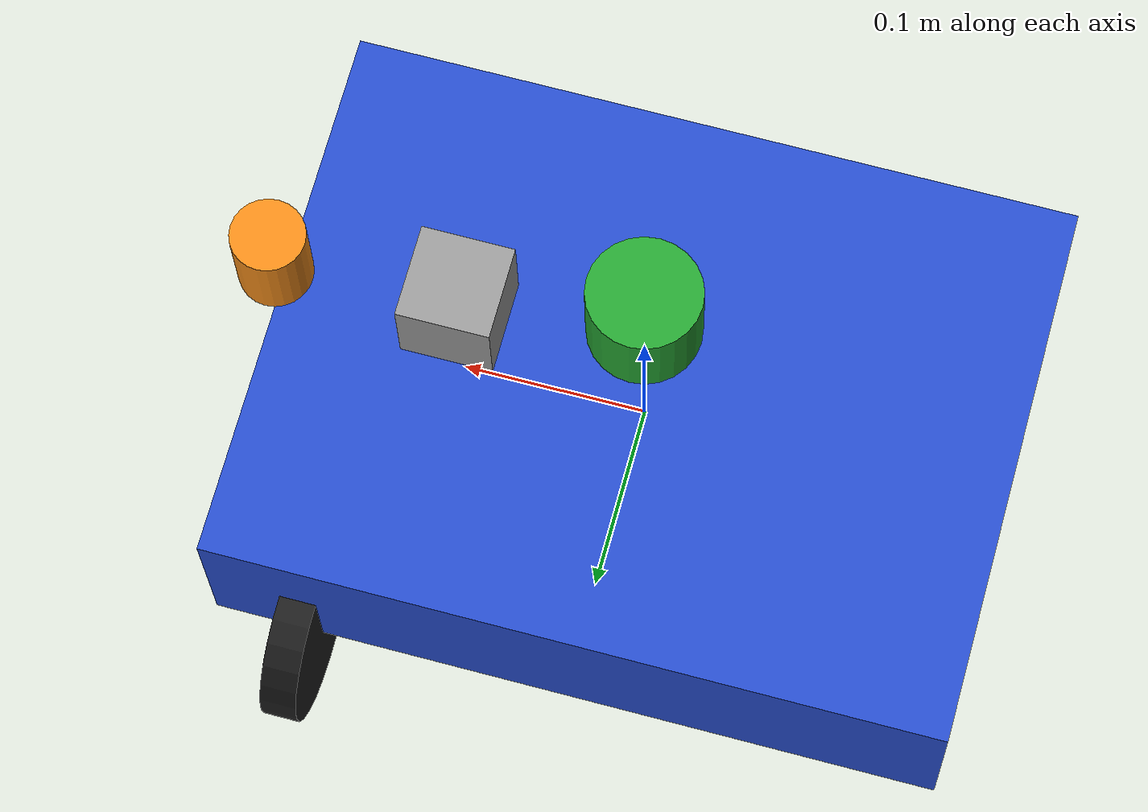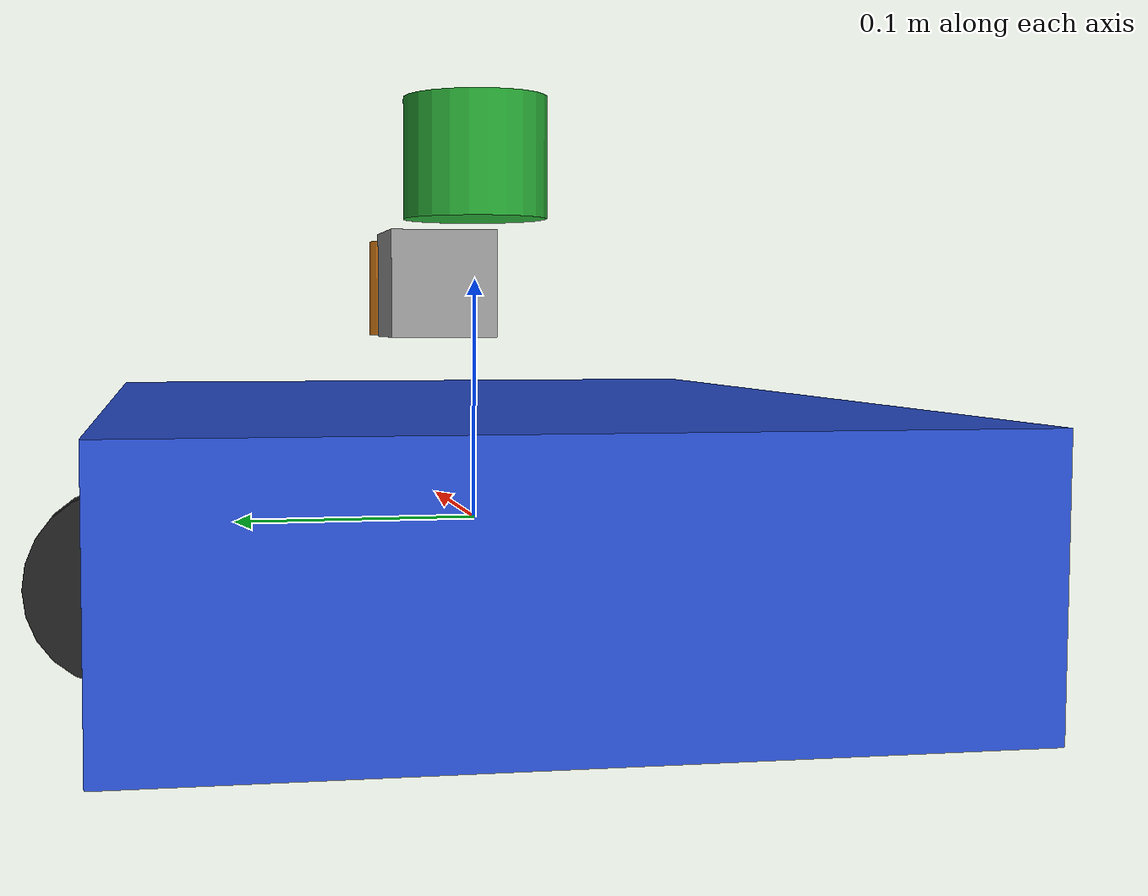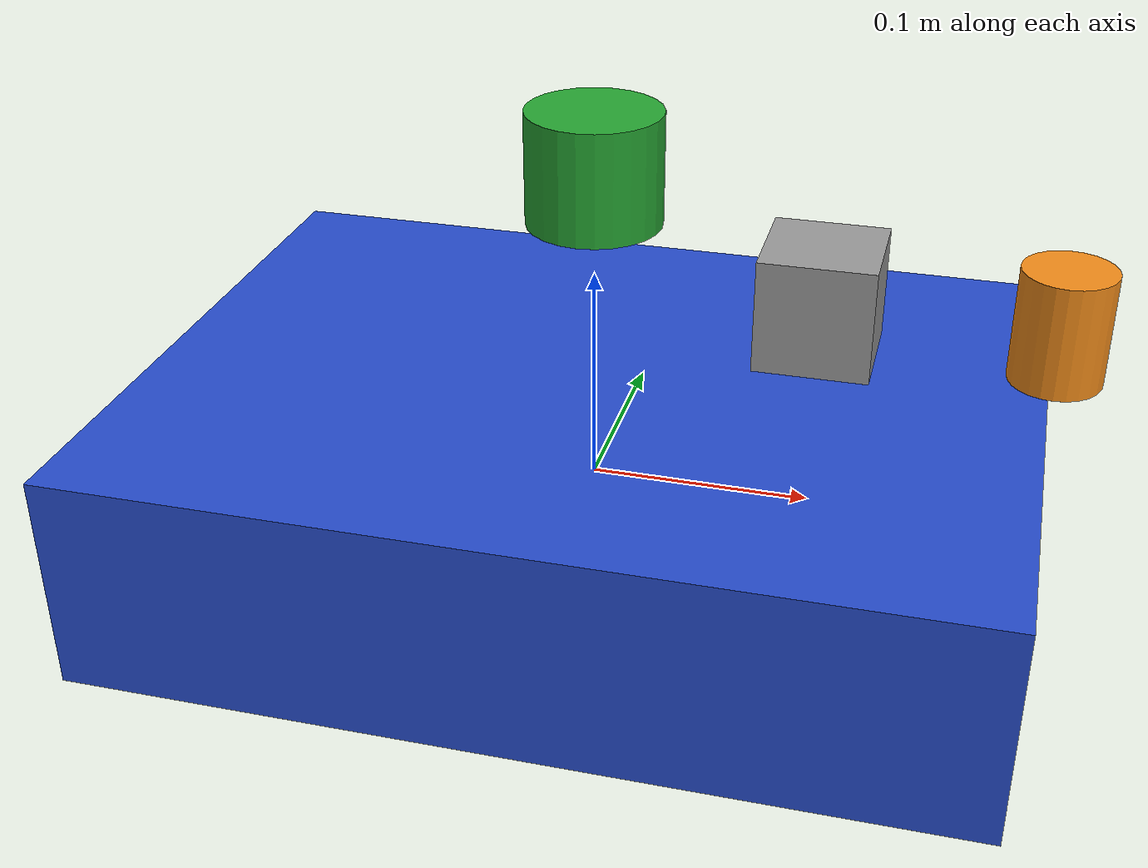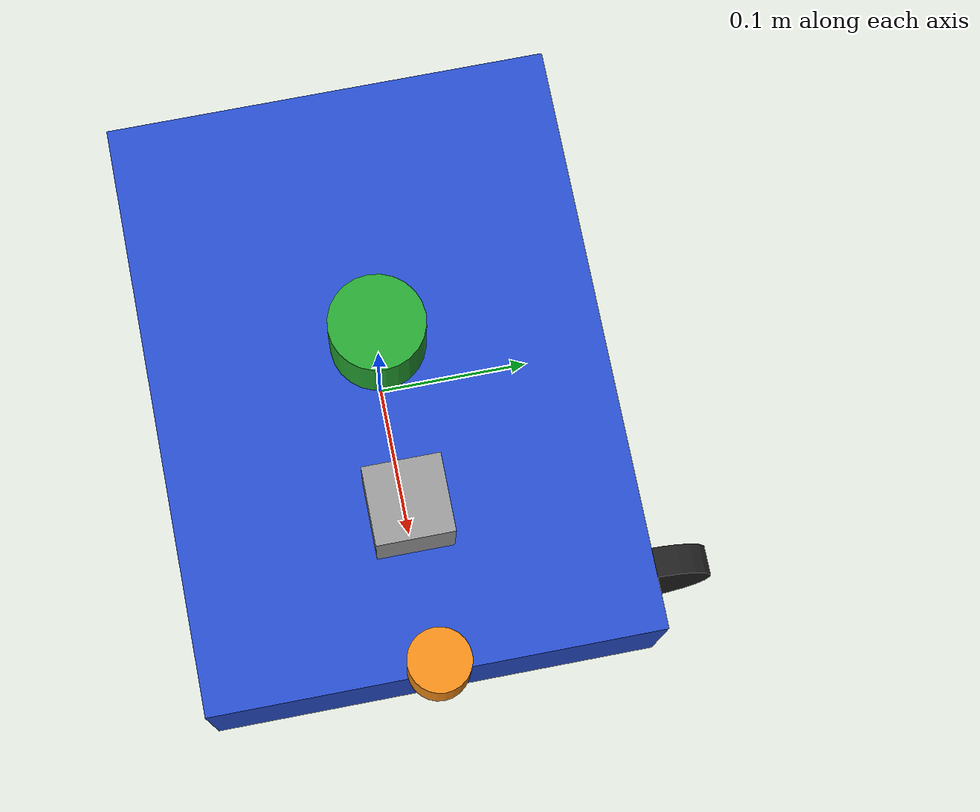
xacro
<?xml version="1.0"?>
<robot name="sasmitha_bot" xmlns:xacro="http://ros.org/wiki/xacro">

  <xacro:include filename="$(find urdf)/urdf/sasmitha_bot.gazebo"/>

  <xacro:property name="wheel_radius" value="0.05"/>
  <xacro:property name="wheel_width" value="0.02"/>
  <xacro:property name="base_length" value="0.4"/>
  <xacro:property name="base_width" value="0.3"/>
  <xacro:property name="base_height" value="0.1"/>

  <link name="base_link">
    <visual>
      <geometry>
        <box size="${base_length} ${base_width} ${base_height}"/>
      </geometry>
      <material name="blue"/>
    </visual>
    <collision>
      <geometry>
        <box size="${base_length} ${base_width} ${base_height}"/>
      </geometry>
    </collision>
    <inertial>
      <mass value="5.0"/>
      <inertia ixx="0.1" iyy="0.1" izz="0.1" ixy="0.0" ixz="0.0" iyz="0.0"/>
    </inertial>
  </link>

  <!-- Four Wheels -->
    <link name="wheel_fl">
    <visual>
      <geometry>
        <cylinder length="${wheel_width}" radius="${wheel_radius}"/>
      </geometry>
      <material name="black"/>
    </visual>
    <collision>
      <geometry>
        <cylinder length="${wheel_width}" radius="${wheel_radius}"/>
      </geometry>
    </collision>
  </link>

  <joint name="wheel_fl_joint" type="continuous">
    <parent link="base_link"/>
    <child link="wheel_fl"/>
    <origin xyz="0.15 0.15 -${wheel_radius}" rpy="0 1.5708 0"/>
    <axis xyz="0 0 1"/>
  </joint>

  <!-- Camera -->
    <link name="camera_link">
    <visual>
      <geometry>
        <box size="0.05 0.05 0.05"/>
      </geometry>
      <material name="gray"/>
    </visual>
  </link>

  <joint name="camera_joint" type="fixed">
    <parent link="base_link"/>
    <child link="camera_link"/>
    <origin xyz="0.1 0 0.1" rpy="0 0 0"/>
  </joint>

  <!-- Lidar -->
    <link name="lidar_link">
    <visual>
      <geometry>
        <cylinder length="0.05" radius="0.03"/>
      </geometry>
      <material name="green"/>
    </visual>
  </link>

  <joint name="lidar_joint" type="fixed">
    <parent link="base_link"/>
    <child link="lidar_link"/>
    <origin xyz="0 0 0.15" rpy="0 0 0"/>
  </joint>

  <!-- Sonar -->
    <link name="sonar_link">
    <visual>
      <geometry>
        <cylinder length="0.05" radius="0.02"/>
      </geometry>
      <material name="orange"/>
    </visual>
  </link>

  <joint name="sonar_joint" type="fixed">
    <parent link="base_link"/>
    <child link="sonar_link"/>
    <origin xyz="0.2 0 0.1" rpy="0 0 0"/>
  </joint>

</robot>
